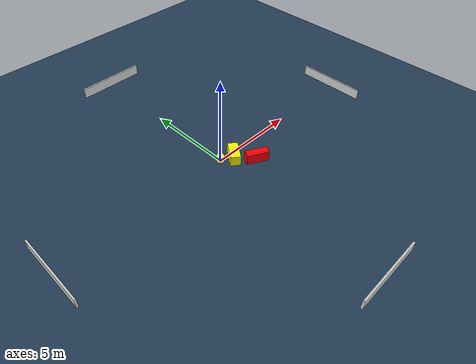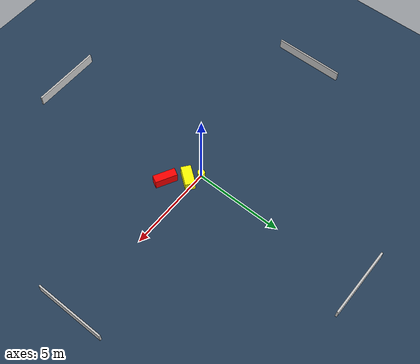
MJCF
<?xml version="1.0" ?>
<mujoco model="generated_environment">
  <option timestep="0.01" integrator="RK4" cone="elliptic"/>
  <default>
    <geom density="1"/>
  </default>
  <asset>
    <texture builtin="gradient" height="3072" name="skybox" rgb1="0.3 0.5 0.7" rgb2="0 0 0" type="skybox" width="512"/>
    <texture builtin="checker" height="300" name="groundplane" rgb1="0.2 0.3 0.4" rgb2="0.1 0.2 0.3" type="2d" width="300"/>
    <material name="groundplane" reflectance="0.2" texrepeat="5 5" texture="groundplane"/>
  </asset>
  <worldbody>
    <light dir="0 0 -1" directional="true" pos="0 0 1.5"/>
    <geom condim="3" friction="0.5 0.005 0.001" material="groundplane" name="floor" pos="0 0 0" size="0 0 0.05" type="plane"/>
    <body name="walls">
      <geom name="wall_1" condim="4" pos="-10.0 0.0 0.3" rgba="0.800000011920929 0.800000011920929 0.800000011920929 1.0" size="0.05 2.0 0.3" type="box"/>
      <geom name="wall_2" condim="4" pos="10.0 0.0 0.3" rgba="0.800000011920929 0.800000011920929 0.800000011920929 1.0" size="0.05 2.0 0.3" type="box"/>
      <geom name="wall_3" condim="4" pos="0.0 -10.0 0.3" rgba="0.800000011920929 0.800000011920929 0.800000011920929 1.0" size="2.0 0.05 0.3" type="box"/>
      <geom name="wall_4" condim="4" pos="0.0 10.0 0.3" rgba="0.800000011920929 0.800000011920929 0.800000011920929 1.0" size="2.0 0.05 0.3" type="box"/>
    </body>
    <body name="robot">
      <joint name="joint_x" type="slide" pos="0 0 0" axis="1 0 0"/>
      <joint name="joint_y" type="slide" pos="0 0 0" axis="0 1 0"/>
      <geom name="robot" type="cylinder" pos="0.0 0.0 0.2" size="0.2 0.2 0.0" mass="5.0" friction="1.0 0.005 0.0001" condim="4" rgba="1.0 1.0 0.0 1.0"/>
    </body>
    <body name="obstacle_1_movable">
      <geom name="obstacle_1_movable" condim="4" pos="0.6631090536252847 -0.3638109908609809 0.3" euler="0 0 142.7600256778171" friction="0.0 0.005 0.001" rgba="1.0 1.0 0.0 1.0" size="0.28149857122627586 0.571665533463567 0.3" type="box" mass="0.1"/>
      <joint type="free"/>
    </body>
    <body name="obstacle_2_static">
      <geom name="obstacle_2_static" condim="4" pos="1.4443133238631052 -1.2949970286144357 0.3" euler="0 0 242.06654417330878" friction="0.0 0.005 0.001" rgba="1.0 0.0 0.0 1.0" size="0.22403167515527334 0.6224099026923857 0.3" type="box"/>
    </body>
  </worldbody>
  <actuator>
    <motor name="actuator_x" joint="joint_x" gear="1" ctrlrange="-1 1"/>
    <motor name="actuator_y" joint="joint_y" gear="1" ctrlrange="-1 1"/>
  </actuator>
</mujoco>
